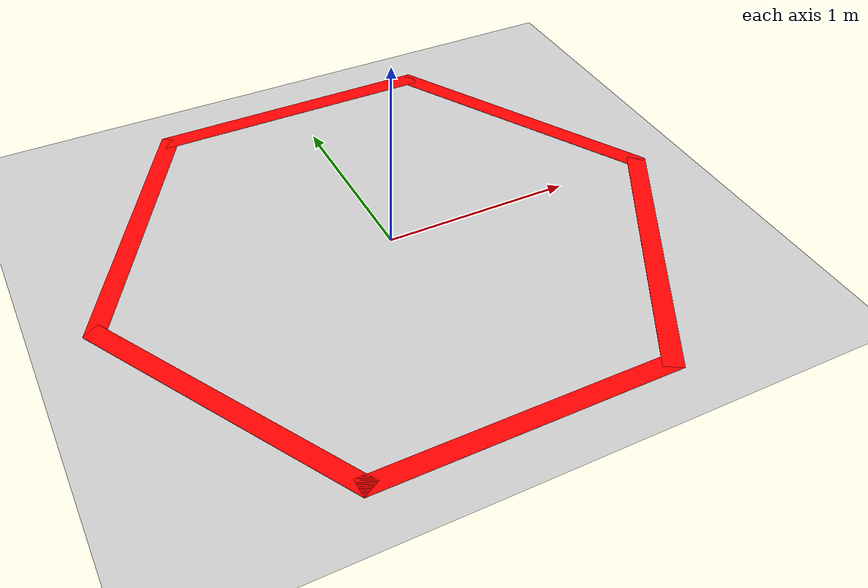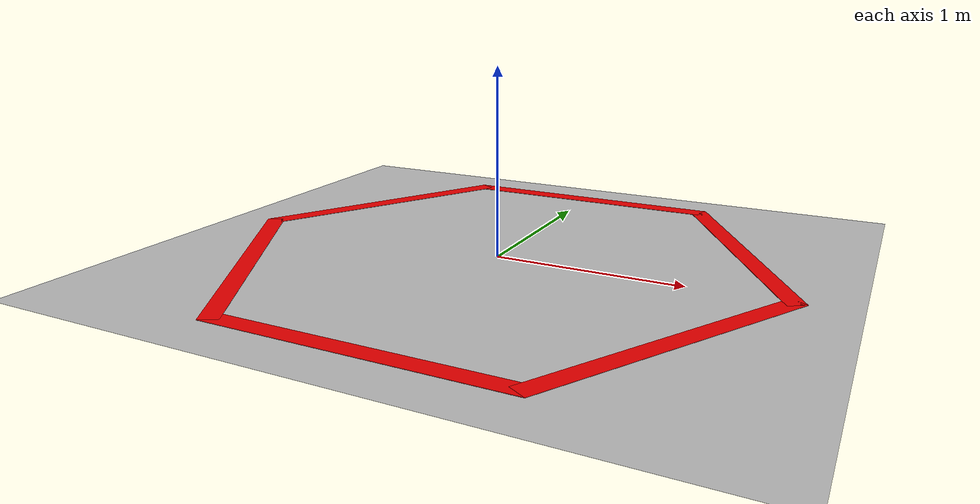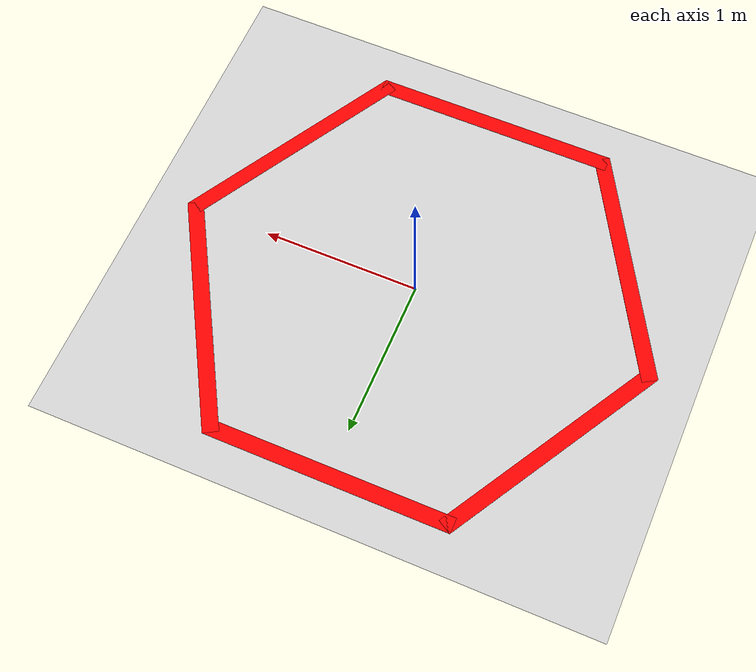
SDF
<?xml version="1.0"?>
<sdf version="1.6">
  <world name="gps_line_test_world">

    <!-- 바닥 -->
    <!-- 외부 모델 조회 없이 시작하도록 바닥과 태양광을 월드에 직접 정의 -->
    <light name="sun" type="directional">
      <cast_shadows>true</cast_shadows>
      <pose>0 0 10 0 0 0</pose>
      <diffuse>0.8 0.8 0.8 1</diffuse>
      <specular>0.2 0.2 0.2 1</specular>
      <attenuation>
        <range>1000</range>
        <constant>0.9</constant>
        <linear>0.01</linear>
        <quadratic>0.001</quadratic>
      </attenuation>
      <direction>-0.5 0.1 -0.9</direction>
    </light>

    <model name="ground_plane">
      <static>true</static>
      <link name="link">
        <collision name="collision">
          <geometry><plane><normal>0 0 1</normal><size>100 100</size></plane></geometry>
          <surface><friction><ode><mu>100</mu><mu2>50</mu2></ode></friction></surface>
        </collision>
        <visual name="visual">
          <geometry><plane><normal>0 0 1</normal><size>100 100</size></plane></geometry>
          <material>
            <ambient>0.8 0.8 0.8 1</ambient>
            <diffuse>0.8 0.8 0.8 1</diffuse>
          </material>
        </visual>
      </link>
    </model>

    <!-- GPS ENU 원점: hybrid_localizer.yaml datum과 같은 값 -->
    <spherical_coordinates>
      <surface_model>EARTH_WGS84</surface_model>
      <latitude_deg>37.5665</latitude_deg>
      <longitude_deg>126.9780</longitude_deg>
      <elevation>38.0</elevation>
      <heading_deg>180.0</heading_deg>
    </spherical_coordinates>

    <scene>
      <shadows>false</shadows>
    </scene>

    <!-- 위에서 내려다보는 초기 시점 -->
    <gui fullscreen="0">
      <camera name="user_camera">
        <pose>0.319654 -0.235002 9.29441 0 1.5138 0.009599</pose>
        <view_controller>orbit</view_controller>
        <projection_type>perspective</projection_type>
      </camera>
    </gui>

    <physics type="ode">
      <real_time_update_rate>1000.0</real_time_update_rate>
      <max_step_size>0.001</max_step_size>
      <real_time_factor>1</real_time_factor>

      <ode>
        <solver>
          <type>quick</type>
          <iters>150</iters>
          <precon_iters>0</precon_iters>
          <sor>1.400000</sor>
          <use_dynamic_moi_rescaling>1</use_dynamic_moi_rescaling>
        </solver>

        <constraints>
          <cfm>0.00001</cfm>
          <erp>0.2</erp>
          <contact_max_correcting_vel>2000.000000</contact_max_correcting_vel>
          <contact_surface_layer>0.01000</contact_surface_layer>
        </constraints>
      </ode>
    </physics>

    <!-- 폭 10cm의 빨간색 정육각형 라인 -->
    <model name="red_hexagon">
      <static>true</static>

      <!-- 육각형 전체의 위치와 회전 -->
      <pose>0 0 0.005 0 0 0</pose>

      <link name="line_link">

        <!-- 위쪽 가로선 -->
        <visual name="top">
          <pose>0 1.299038 0 0 0 0</pose>
          <geometry>
            <box>
              <size>1.56 0.1 0.002</size>
            </box>
          </geometry>
          <material>
            <ambient>1 0 0 1</ambient>
            <diffuse>1 0 0 1</diffuse>
          </material>
          <cast_shadows>false</cast_shadows>
        </visual>

        <!-- 오른쪽 위: -60도 -->
        <visual name="upper_right">
          <pose>1.125 0.649519 0 0 0 -1.047198</pose>
          <geometry>
            <box>
              <size>1.56 0.1 0.002</size>
            </box>
          </geometry>
          <material>
            <ambient>1 0 0 1</ambient>
            <diffuse>1 0 0 1</diffuse>
          </material>
          <cast_shadows>false</cast_shadows>
        </visual>

        <!-- 오른쪽 아래: +60도 -->
        <visual name="lower_right">
          <pose>1.125 -0.649519 0 0 0 1.047198</pose>
          <geometry>
            <box>
              <size>1.56 0.1 0.002</size>
            </box>
          </geometry>
          <material>
            <ambient>1 0 0 1</ambient>
            <diffuse>1 0 0 1</diffuse>
          </material>
          <cast_shadows>false</cast_shadows>
        </visual>

        <!-- 아래쪽 가로선 -->
        <visual name="bottom">
          <pose>0 -1.299038 0 0 0 0</pose>
          <geometry>
            <box>
              <size>1.56 0.1 0.002</size>
            </box>
          </geometry>
          <material>
            <ambient>1 0 0 1</ambient>
            <diffuse>1 0 0 1</diffuse>
          </material>
          <cast_shadows>false</cast_shadows>
        </visual>

        <!-- 왼쪽 아래: -60도 -->
        <visual name="lower_left">
          <pose>-1.125 -0.649519 0 0 0 -1.047198</pose>
          <geometry>
            <box>
              <size>1.56 0.1 0.002</size>
            </box>
          </geometry>
          <material>
            <ambient>1 0 0 1</ambient>
            <diffuse>1 0 0 1</diffuse>
          </material>
          <cast_shadows>false</cast_shadows>
        </visual>

        <!-- 왼쪽 위: +60도 -->
        <visual name="upper_left">
          <pose>-1.125 0.649519 0 0 0 1.047198</pose>
          <geometry>
            <box>
              <size>1.56 0.1 0.002</size>
            </box>
          </geometry>
          <material>
            <ambient>1 0 0 1</ambient>
            <diffuse>1 0 0 1</diffuse>
          </material>
          <cast_shadows>false</cast_shadows>
        </visual>

      </link>
    </model>

  </world>
</sdf>
